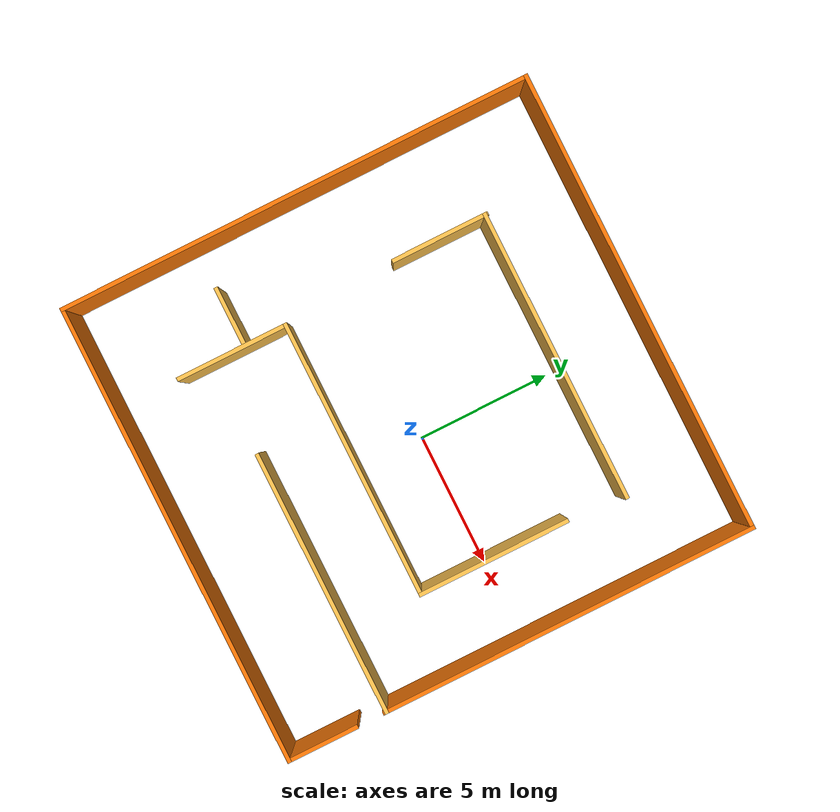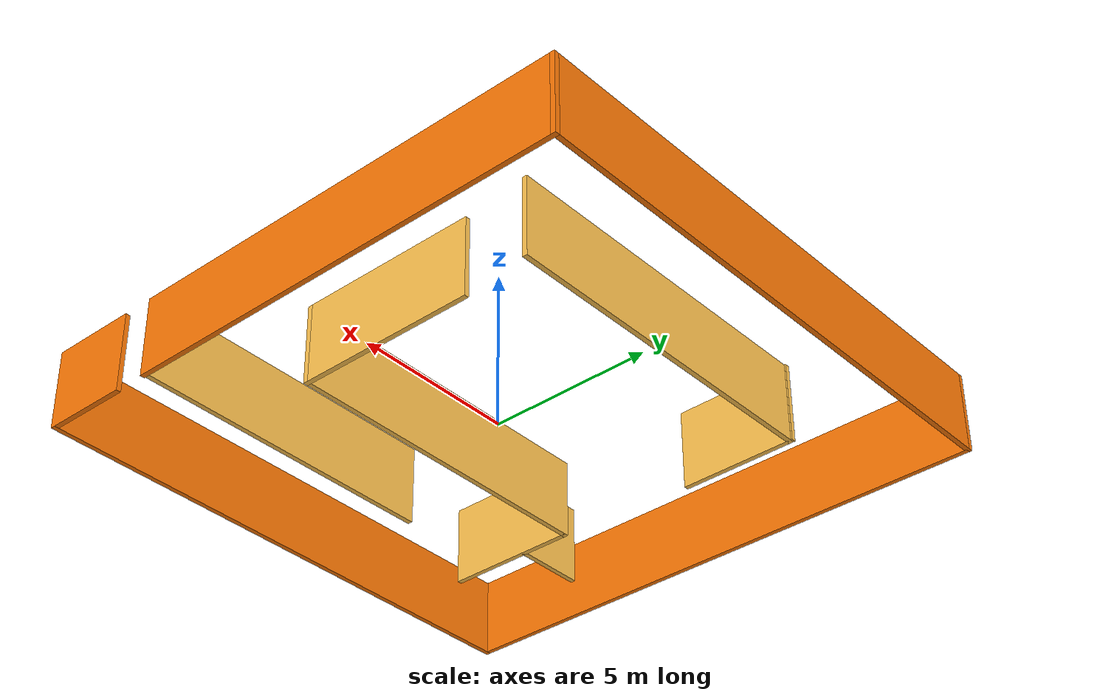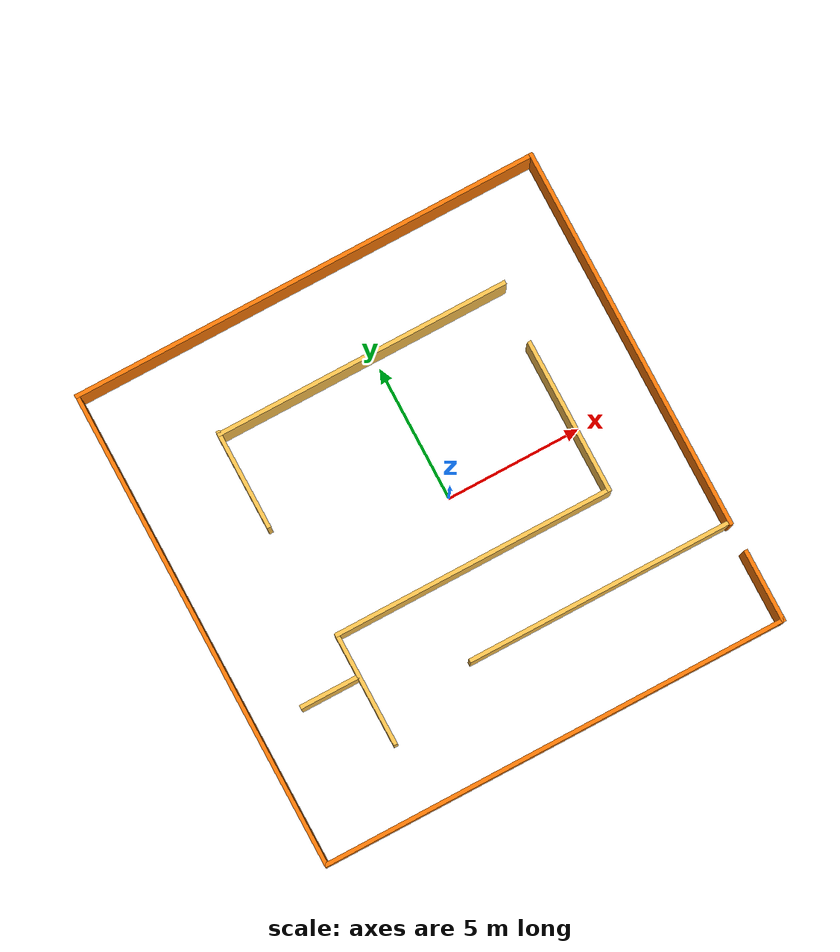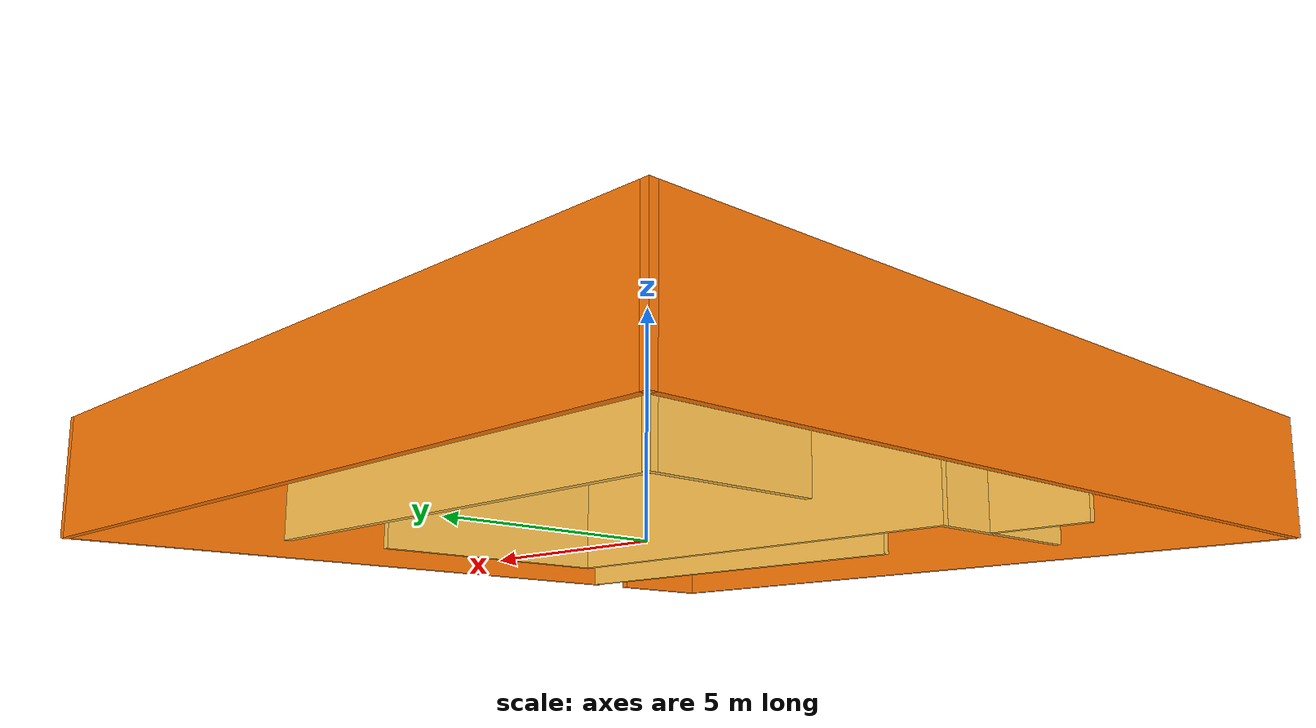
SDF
<?xml version='1.0'?>
<sdf version='1.7'>
  <model name='mab_model'>
    <pose>-0.845 -0.146215 0 0 -0 0</pose>
    <link name='Wall_0'>
      <collision name='Wall_0_Collision'>
        <geometry>
          <box>
            <size>10 0.15 2.5</size>
          </box>
        </geometry>
        <pose>0 0 1.25 0 -0 0</pose>
      </collision>
      <visual name='Wall_0_Visual'>
        <pose>0 0 1.25 0 -0 0</pose>
        <geometry>
          <box>
            <size>10 0.15 2.5</size>
          </box>
        </geometry>
        <material>
          <script>
            <uri>file://media/materials/scripts/gazebo.material</uri>
            <name>Gazebo/Grey</name>
          </script>
          <ambient>1 0.764706 0.305882 1</ambient>
        </material>
        <meta>
          <layer>0</layer>
        </meta>
      </visual>
      <pose>3.75 -5.17396 0 0 -0 0</pose>
    </link>
    <link name='Wall_1'>
      <collision name='Wall_1_Collision'>
        <geometry>
          <box>
            <size>14.2864 0.15 2.5</size>
          </box>
        </geometry>
        <pose>0 0 1.25 0 -0 0</pose>
      </collision>
      <visual name='Wall_1_Visual'>
        <pose>0 0 1.25 0 -0 0</pose>
        <geometry>
          <box>
            <size>14.2864 0.15 2.5</size>
          </box>
        </geometry>
        <material>
          <script>
            <uri>file://media/materials/scripts/gazebo.material</uri>
            <name>Gazebo/Grey</name>
          </script>
          <ambient>0.996078 0.47451 0.0196078 1</ambient>
        </material>
        <meta>
          <layer>0</layer>
        </meta>
      </visual>
      <pose>8.675 1.848 0 0 -0 1.5708</pose>
    </link>
    <link name='Wall_11'>
      <collision name='Wall_11_Collision'>
        <geometry>
          <box>
            <size>11 0.15 2.5</size>
          </box>
        </geometry>
        <pose>0 0 1.25 0 -0 0</pose>
      </collision>
      <visual name='Wall_11_Visual'>
        <pose>0 0 1.25 0 -0 0</pose>
        <geometry>
          <box>
            <size>11 0.15 2.5</size>
          </box>
        </geometry>
        <material>
          <script>
            <uri>file://media/materials/scripts/gazebo.material</uri>
            <name>Gazebo/Grey</name>
          </script>
          <ambient>1 0.764706 0.305882 1</ambient>
        </material>
        <meta>
          <layer>0</layer>
        </meta>
      </visual>
      <pose>0.363325 5.51996 0 0 -0 3.14159</pose>
    </link>
    <link name='Wall_12'>
      <collision name='Wall_12_Collision'>
        <geometry>
          <box>
            <size>3.69487 0.15 2.5</size>
          </box>
        </geometry>
        <pose>0 0 1.25 0 -0 0</pose>
      </collision>
      <visual name='Wall_12_Visual'>
        <pose>0 0 1.25 0 -0 0</pose>
        <geometry>
          <box>
            <size>3.69487 0.15 2.5</size>
          </box>
        </geometry>
        <material>
          <script>
            <uri>file://media/materials/scripts/gazebo.material</uri>
            <name>Gazebo/Grey</name>
          </script>
          <ambient>1 0.764706 0.305882 1</ambient>
        </material>
        <meta>
          <layer>0</layer>
        </meta>
      </visual>
      <pose>-5.06168 3.79379 0 0 -0 -1.5708</pose>
    </link>
    <link name='Wall_14'>
      <collision name='Wall_14_Collision'>
        <geometry>
          <box>
            <size>5.75 0.15 2.5</size>
          </box>
        </geometry>
        <pose>0 0 1.25 0 -0 0</pose>
      </collision>
      <visual name='Wall_14_Visual'>
        <pose>0 0 1.25 0 -0 0</pose>
        <geometry>
          <box>
            <size>5.75 0.15 2.5</size>
          </box>
        </geometry>
        <material>
          <script>
            <uri>file://media/materials/scripts/gazebo.material</uri>
            <name>Gazebo/Grey</name>
          </script>
          <ambient>1 0.764706 0.305882 1</ambient>
        </material>
        <meta>
          <layer>0</layer>
        </meta>
      </visual>
      <pose>5.60328 0.499424 0 0 -0 -1.5708</pose>
    </link>
    <link name='Wall_15'>
      <collision name='Wall_15_Collision'>
        <geometry>
          <box>
            <size>10.5 0.15 2.5</size>
          </box>
        </geometry>
        <pose>0 0 1.25 0 -0 0</pose>
      </collision>
      <visual name='Wall_15_Visual'>
        <pose>0 0 1.25 0 -0 0</pose>
        <geometry>
          <box>
            <size>10.5 0.15 2.5</size>
          </box>
        </geometry>
        <material>
          <script>
            <uri>file://media/materials/scripts/gazebo.material</uri>
            <name>Gazebo/Grey</name>
          </script>
          <ambient>1 0.764706 0.305882 1</ambient>
        </material>
        <meta>
          <layer>0</layer>
        </meta>
      </visual>
      <pose>0.42828 -2.30058 0 0 -0 3.14159</pose>
    </link>
    <link name='Wall_16'>
      <collision name='Wall_16_Collision'>
        <geometry>
          <box>
            <size>4.25 0.15 2.5</size>
          </box>
        </geometry>
        <pose>0 0 1.25 0 -0 0</pose>
      </collision>
      <visual name='Wall_16_Visual'>
        <pose>0 0 1.25 0 -0 0</pose>
        <geometry>
          <box>
            <size>4.25 0.15 2.5</size>
          </box>
        </geometry>
        <material>
          <script>
            <uri>file://media/materials/scripts/gazebo.material</uri>
            <name>Gazebo/Grey</name>
          </script>
          <ambient>1 0.764706 0.305882 1</ambient>
        </material>
        <meta>
          <layer>0</layer>
        </meta>
      </visual>
      <pose>-4.74672 -4.35058 0 0 -0 -1.5708</pose>
    </link>
    <link name='Wall_3'>
      <collision name='Wall_3_Collision'>
        <geometry>
          <box>
            <size>17.5 0.15 2.5</size>
          </box>
        </geometry>
        <pose>0 0 1.25 0 -0 0</pose>
      </collision>
      <visual name='Wall_3_Visual'>
        <pose>0 0 1.25 0 -0 0</pose>
        <geometry>
          <box>
            <size>17.5 0.15 2.5</size>
          </box>
        </geometry>
        <material>
          <script>
            <uri>file://media/materials/scripts/gazebo.material</uri>
            <name>Gazebo/Grey</name>
          </script>
          <ambient>0.996078 0.47451 0.0196078 1</ambient>
        </material>
        <meta>
          <layer>0</layer>
        </meta>
      </visual>
      <pose>0 8.91621 0 0 -0 3.14159</pose>
    </link>
    <link name='Wall_30'>
      <collision name='Wall_30_Collision'>
        <geometry>
          <box>
            <size>2.25 0.15 2.5</size>
          </box>
        </geometry>
        <pose>0 0 1.25 0 -0 0</pose>
      </collision>
      <visual name='Wall_30_Visual'>
        <pose>0 0 1.25 0 -0 0</pose>
        <geometry>
          <box>
            <size>2.25 0.15 2.5</size>
          </box>
        </geometry>
        <material>
          <script>
            <uri>file://media/materials/scripts/gazebo.material</uri>
            <name>Gazebo/Grey</name>
          </script>
          <ambient>1 0.764706 0.305882 1</ambient>
        </material>
        <meta>
          <layer>0</layer>
        </meta>
      </visual>
      <pose>-5.85549 -3.87106 0 0 -0 3.14159</pose>
    </link>
    <link name='Wall_4'>
      <collision name='Wall_4_Collision'>
        <geometry>
          <box>
            <size>17.9823 0.15 2.5</size>
          </box>
        </geometry>
        <pose>0 0 1.25 0 -0 0</pose>
      </collision>
      <visual name='Wall_4_Visual'>
        <pose>0 0 1.25 0 -0 0</pose>
        <geometry>
          <box>
            <size>17.9823 0.15 2.5</size>
          </box>
        </geometry>
        <material>
          <script>
            <uri>file://media/materials/scripts/gazebo.material</uri>
            <name>Gazebo/Grey</name>
          </script>
          <ambient>0.996078 0.47451 0.0196078 1</ambient>
        </material>
        <meta>
          <layer>0</layer>
        </meta>
      </visual>
      <pose>-8.675 8.8e-05 0 0 -0 -1.5708</pose>
    </link>
    <link name='Wall_5'>
      <collision name='Wall_5_Collision'>
        <geometry>
          <box>
            <size>17.5 0.15 2.5</size>
          </box>
        </geometry>
        <pose>0 0 1.25 0 -0 0</pose>
      </collision>
      <visual name='Wall_5_Visual'>
        <pose>0 0 1.25 0 -0 0</pose>
        <geometry>
          <box>
            <size>17.5 0.15 2.5</size>
          </box>
        </geometry>
        <material>
          <script>
            <uri>file://media/materials/scripts/gazebo.material</uri>
            <name>Gazebo/Grey</name>
          </script>
          <ambient>0.996078 0.47451 0.0196078 1</ambient>
        </material>
        <meta>
          <layer>0</layer>
        </meta>
      </visual>
      <pose>0 -8.91604 0 0 -0 0</pose>
    </link>
    <link name='Wall_6'>
      <collision name='Wall_6_Collision'>
        <geometry>
          <box>
            <size>2.73267 0.15 2.5</size>
          </box>
        </geometry>
        <pose>0 0 1.25 0 -0 0</pose>
      </collision>
      <visual name='Wall_6_Visual'>
        <pose>0 0 1.25 0 -0 0</pose>
        <geometry>
          <box>
            <size>2.73267 0.15 2.5</size>
          </box>
        </geometry>
        <material>
          <script>
            <uri>file://media/materials/scripts/gazebo.material</uri>
            <name>Gazebo/Grey</name>
          </script>
          <ambient>0.996078 0.47451 0.0196078 1</ambient>
        </material>
        <meta>
          <layer>0</layer>
        </meta>
      </visual>
      <pose>8.675 -7.62491 0 0 -0 1.5708</pose>
    </link>
    <static>1</static>
  </model>
</sdf>
